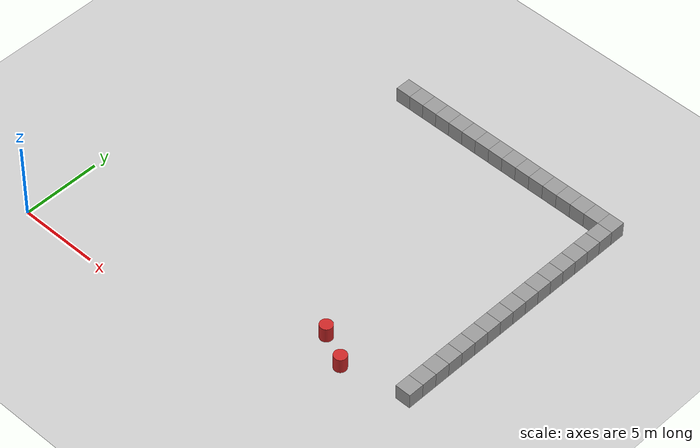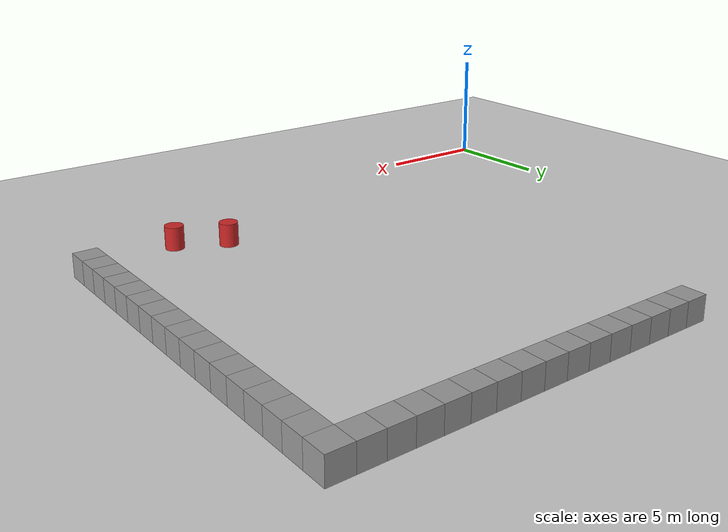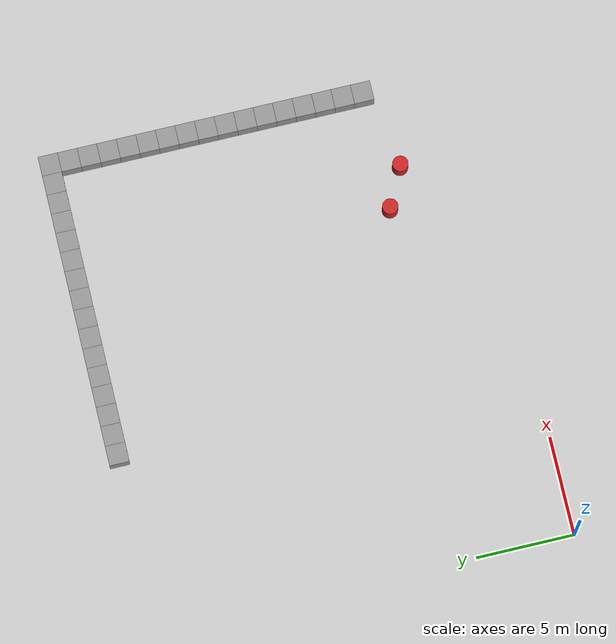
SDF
<sdf version="1.4">
 <world name="default">
  <model name="ground_plane">
   <static>1</static>
   <link name="link">
    <collision name="collision">
     <geometry><plane><normal>0 0 1</normal><size>100 100</size></plane></geometry>
     <surface><friction><ode><mu>100</mu><mu2>50</mu2></ode></friction></surface>
    </collision>
    <visual name="visual">
     <cast_shadows>0</cast_shadows>
     <geometry><plane><normal>0 0 1</normal><size>100 100</size></plane></geometry>
     <material>
      <script><uri>file://media/materials/scripts/gazebo.material</uri><name>Gazebo/Grey</name></script>
     </material>
    </visual>
    <velocity_decay><linear>0</linear><angular>0</angular></velocity_decay>
   </link>
  </model>
  <model name="unit_box_112">
   <pose>9 21 0.5 0 -0 0</pose>
   <link name="link">
    <inertial>
     <mass>1</mass>
     <inertia><ixx>1</ixx><ixy>0</ixy><ixz>0</ixz><iyy>1</iyy><iyz>0</iyz><izz>1</izz></inertia>
    </inertial>
    <collision name="collision"><geometry><box><size>1 1 1</size></box></geometry></collision>
    <visual name="visual">
     <geometry><box><size>1 1 1</size></box></geometry>
     <material>
      <script><uri>file://media/materials/scripts/gazebo.material</uri><name>Gazebo/Grey</name></script>
     </material>
    </visual>
    <velocity_decay><linear>0</linear><angular>0</angular></velocity_decay>
   </link>
   <static>1</static>
  </model>
  <model name="unit_box_113">
   <pose>10 21 0.5 0 -0 0</pose>
   <link name="link">
    <inertial>
     <mass>1</mass>
     <inertia><ixx>1</ixx><ixy>0</ixy><ixz>0</ixz><iyy>1</iyy><iyz>0</iyz><izz>1</izz></inertia>
    </inertial>
    <collision name="collision"><geometry><box><size>1 1 1</size></box></geometry></collision>
    <visual name="visual">
     <geometry><box><size>1 1 1</size></box></geometry>
     <material>
      <script><uri>file://media/materials/scripts/gazebo.material</uri><name>Gazebo/Grey</name></script>
     </material>
    </visual>
    <velocity_decay><linear>0</linear><angular>0</angular></velocity_decay>
   </link>
   <static>1</static>
  </model>
  <model name="unit_box_114">
   <pose>11 21 0.5 0 -0 0</pose>
   <link name="link">
    <inertial>
     <mass>1</mass>
     <inertia><ixx>1</ixx><ixy>0</ixy><ixz>0</ixz><iyy>1</iyy><iyz>0</iyz><izz>1</izz></inertia>
    </inertial>
    <collision name="collision"><geometry><box><size>1 1 1</size></box></geometry></collision>
    <visual name="visual">
     <geometry><box><size>1 1 1</size></box></geometry>
     <material>
      <script><uri>file://media/materials/scripts/gazebo.material</uri><name>Gazebo/Grey</name></script>
     </material>
    </visual>
    <velocity_decay><linear>0</linear><angular>0</angular></velocity_decay>
   </link>
   <static>1</static>
  </model>
  <model name="unit_box_115">
   <pose>12 21 0.5 0 -0 0</pose>
   <link name="link">
    <inertial>
     <mass>1</mass>
     <inertia><ixx>1</ixx><ixy>0</ixy><ixz>0</ixz><iyy>1</iyy><iyz>0</iyz><izz>1</izz></inertia>
    </inertial>
    <collision name="collision"><geometry><box><size>1 1 1</size></box></geometry></collision>
    <visual name="visual">
     <geometry><box><size>1 1 1</size></box></geometry>
     <material>
      <script><uri>file://media/materials/scripts/gazebo.material</uri><name>Gazebo/Grey</name></script>
     </material>
    </visual>
    <velocity_decay><linear>0</linear><angular>0</angular></velocity_decay>
   </link>
   <static>1</static>
  </model>
  <model name="unit_box_116">
   <pose>13 21 0.5 0 -0 0</pose>
   <link name="link">
    <inertial>
     <mass>1</mass>
     <inertia><ixx>1</ixx><ixy>0</ixy><ixz>0</ixz><iyy>1</iyy><iyz>0</iyz><izz>1</izz></inertia>
    </inertial>
    <collision name="collision"><geometry><box><size>1 1 1</size></box></geometry></collision>
    <visual name="visual">
     <geometry><box><size>1 1 1</size></box></geometry>
     <material>
      <script><uri>file://media/materials/scripts/gazebo.material</uri><name>Gazebo/Grey</name></script>
     </material>
    </visual>
    <velocity_decay><linear>0</linear><angular>0</angular></velocity_decay>
   </link>
   <static>1</static>
  </model>
  <model name="unit_box_121">
   <pose>14 21 0.5 0 -0 0</pose>
   <link name="link">
    <inertial>
     <mass>1</mass>
     <inertia><ixx>1</ixx><ixy>0</ixy><ixz>0</ixz><iyy>1</iyy><iyz>0</iyz><izz>1</izz></inertia>
    </inertial>
    <collision name="collision"><geometry><box><size>1 1 1</size></box></geometry></collision>
    <visual name="visual">
     <geometry><box><size>1 1 1</size></box></geometry>
     <material>
      <script><uri>file://media/materials/scripts/gazebo.material</uri><name>Gazebo/Grey</name></script>
     </material>
    </visual>
    <velocity_decay><linear>0</linear><angular>0</angular></velocity_decay>
   </link>
   <static>1</static>
  </model>
  <model name="unit_box_134">
   <pose>15 21 0.5 0 -0 0</pose>
   <link name="link">
    <inertial>
     <mass>1</mass>
     <inertia><ixx>1</ixx><ixy>0</ixy><ixz>0</ixz><iyy>1</iyy><iyz>0</iyz><izz>1</izz></inertia>
    </inertial>
    <collision name="collision"><geometry><box><size>1 1 1</size></box></geometry></collision>
    <visual name="visual">
     <geometry><box><size>1 1 1</size></box></geometry>
     <material>
      <script><uri>file://media/materials/scripts/gazebo.material</uri><name>Gazebo/Grey</name></script>
     </material>
    </visual>
    <velocity_decay><linear>0</linear><angular>0</angular></velocity_decay>
   </link>
   <static>1</static>
  </model>
  <model name="unit_box_135">
   <pose>16 21 0.5 0 0 0</pose>
   <link name="link">
    <inertial>
     <mass>1</mass>
     <inertia><ixx>1</ixx><ixy>0</ixy><ixz>0</ixz><iyy>1</iyy><iyz>0</iyz><izz>1</izz></inertia>
    </inertial>
    <collision name="collision"><geometry><box><size>1 1 1</size></box></geometry></collision>
    <visual name="visual">
     <geometry><box><size>1 1 1</size></box></geometry>
     <material>
      <script><uri>file://media/materials/scripts/gazebo.material</uri><name>Gazebo/Grey</name></script>
     </material>
    </visual>
    <velocity_decay><linear>0</linear><angular>0</angular></velocity_decay>
   </link>
   <static>1</static>
  </model>
  <model name="unit_box_136">
   <pose>17 21 0.5 0 0 0</pose>
   <link name="link">
    <inertial>
     <mass>1</mass>
     <inertia><ixx>1</ixx><ixy>0</ixy><ixz>0</ixz><iyy>1</iyy><iyz>0</iyz><izz>1</izz></inertia>
    </inertial>
    <collision name="collision"><geometry><box><size>1 1 1</size></box></geometry></collision>
    <visual name="visual">
     <geometry><box><size>1 1 1</size></box></geometry>
     <material>
      <script><uri>file://media/materials/scripts/gazebo.material</uri><name>Gazebo/Grey</name></script>
     </material>
    </visual>
    <velocity_decay><linear>0</linear><angular>0</angular></velocity_decay>
   </link>
   <static>1</static>
  </model>
  <model name="unit_box_137">
   <pose>18 21 0.5 0 0 0</pose>
   <link name="link">
    <inertial>
     <mass>1</mass>
     <inertia><ixx>1</ixx><ixy>0</ixy><ixz>0</ixz><iyy>1</iyy><iyz>0</iyz><izz>1</izz></inertia>
    </inertial>
    <collision name="collision"><geometry><box><size>1 1 1</size></box></geometry></collision>
    <visual name="visual">
     <geometry><box><size>1 1 1</size></box></geometry>
     <material>
      <script><uri>file://media/materials/scripts/gazebo.material</uri><name>Gazebo/Grey</name></script>
     </material>
    </visual>
    <velocity_decay><linear>0</linear><angular>0</angular></velocity_decay>
   </link>
   <static>1</static>
  </model>
  <model name="unit_box_146">
   <pose>19 21 0.5 0 -0 0</pose>
   <link name="link">
    <inertial>
     <mass>1</mass>
     <inertia><ixx>1</ixx><ixy>0</ixy><ixz>0</ixz><iyy>1</iyy><iyz>0</iyz><izz>1</izz></inertia>
    </inertial>
    <collision name="collision"><geometry><box><size>1 1 1</size></box></geometry></collision>
    <visual name="visual">
     <geometry><box><size>1 1 1</size></box></geometry>
     <material>
      <script><uri>file://media/materials/scripts/gazebo.material</uri><name>Gazebo/Grey</name></script>
     </material>
    </visual>
    <velocity_decay><linear>0</linear><angular>0</angular></velocity_decay>
   </link>
   <static>1</static>
  </model>
  <model name="unit_box_147">
   <pose>20 21 0.5 0 -0 0</pose>
   <link name="link">
    <inertial>
     <mass>1</mass>
     <inertia><ixx>1</ixx><ixy>0</ixy><ixz>0</ixz><iyy>1</iyy><iyz>0</iyz><izz>1</izz></inertia>
    </inertial>
    <collision name="collision"><geometry><box><size>1 1 1</size></box></geometry></collision>
    <visual name="visual">
     <geometry><box><size>1 1 1</size></box></geometry>
     <material>
      <script><uri>file://media/materials/scripts/gazebo.material</uri><name>Gazebo/Grey</name></script>
     </material>
    </visual>
    <velocity_decay><linear>0</linear><angular>0</angular></velocity_decay>
   </link>
   <static>1</static>
  </model>
  <model name="unit_box_148">
   <pose>21 21 0.5 0 -0 0</pose>
   <link name="link">
    <inertial>
     <mass>1</mass>
     <inertia><ixx>1</ixx><ixy>0</ixy><ixz>0</ixz><iyy>1</iyy><iyz>0</iyz><izz>1</izz></inertia>
    </inertial>
    <collision name="collision"><geometry><box><size>1 1 1</size></box></geometry></collision>
    <visual name="visual">
     <geometry><box><size>1 1 1</size></box></geometry>
     <material>
      <script><uri>file://media/materials/scripts/gazebo.material</uri><name>Gazebo/Grey</name></script>
     </material>
    </visual>
    <velocity_decay><linear>0</linear><angular>0</angular></velocity_decay>
   </link>
   <static>1</static>
  </model>
  <model name="unit_box_150">
   <pose>22 21 0.5 0 -0 0</pose>
   <link name="link">
    <inertial>
     <mass>1</mass>
     <inertia><ixx>1</ixx><ixy>0</ixy><ixz>0</ixz><iyy>1</iyy><iyz>0</iyz><izz>1</izz></inertia>
    </inertial>
    <collision name="collision"><geometry><box><size>1 1 1</size></box></geometry></collision>
    <visual name="visual">
     <geometry><box><size>1 1 1</size></box></geometry>
     <material>
      <script><uri>file://media/materials/scripts/gazebo.material</uri><name>Gazebo/Grey</name></script>
     </material>
    </visual>
    <velocity_decay><linear>0</linear><angular>0</angular></velocity_decay>
   </link>
   <static>1</static>
  </model>
  <model name="unit_box_151">
   <pose>23 21 0.5 0 -0 0</pose>
   <link name="link">
    <inertial>
     <mass>1</mass>
     <inertia><ixx>1</ixx><ixy>0</ixy><ixz>0</ixz><iyy>1</iyy><iyz>0</iyz><izz>1</izz></inertia>
    </inertial>
    <collision name="collision"><geometry><box><size>1 1 1</size></box></geometry></collision>
    <visual name="visual">
     <geometry><box><size>1 1 1</size></box></geometry>
     <material>
      <script><uri>file://media/materials/scripts/gazebo.material</uri><name>Gazebo/Grey</name></script>
     </material>
    </visual>
    <velocity_decay><linear>0</linear><angular>0</angular></velocity_decay>
   </link>
   <static>1</static>
  </model>
  <model name="unit_box_152">
   <pose>24 21 0.5 0 -0 0</pose>
   <link name="link">
    <inertial>
     <mass>1</mass>
     <inertia><ixx>1</ixx><ixy>0</ixy><ixz>0</ixz><iyy>1</iyy><iyz>0</iyz><izz>1</izz></inertia>
    </inertial>
    <collision name="collision"><geometry><box><size>1 1 1</size></box></geometry></collision>
    <visual name="visual">
     <geometry><box><size>1 1 1</size></box></geometry>
     <material>
      <script><uri>file://media/materials/scripts/gazebo.material</uri><name>Gazebo/Grey</name></script>
     </material>
    </visual>
    <velocity_decay><linear>0</linear><angular>0</angular></velocity_decay>
   </link>
   <static>1</static>
  </model>
  <model name="unit_box_153">
   <pose>24 20 0.5 0 -0 0</pose>
   <link name="link">
    <inertial>
     <mass>1</mass>
     <inertia><ixx>1</ixx><ixy>0</ixy><ixz>0</ixz><iyy>1</iyy><iyz>0</iyz><izz>1</izz></inertia>
    </inertial>
    <collision name="collision"><geometry><box><size>1 1 1</size></box></geometry></collision>
    <visual name="visual">
     <geometry><box><size>1 1 1</size></box></geometry>
     <material>
      <script><uri>file://media/materials/scripts/gazebo.material</uri><name>Gazebo/Grey</name></script>
     </material>
    </visual>
    <velocity_decay><linear>0</linear><angular>0</angular></velocity_decay>
   </link>
   <static>1</static>
  </model>
  <model name="unit_box_154">
   <pose>24 19 0.5 0 -0 0</pose>
   <link name="link">
    <inertial>
     <mass>1</mass>
     <inertia><ixx>1</ixx><ixy>0</ixy><ixz>0</ixz><iyy>1</iyy><iyz>0</iyz><izz>1</izz></inertia>
    </inertial>
    <collision name="collision"><geometry><box><size>1 1 1</size></box></geometry></collision>
    <visual name="visual">
     <geometry><box><size>1 1 1</size></box></geometry>
     <material>
      <script><uri>file://media/materials/scripts/gazebo.material</uri><name>Gazebo/Grey</name></script>
     </material>
    </visual>
    <velocity_decay><linear>0</linear><angular>0</angular></velocity_decay>
   </link>
   <static>1</static>
  </model>
  <model name="unit_box_155">
   <pose>24 18 0.5 0 -0 0</pose>
   <link name="link">
    <inertial>
     <mass>1</mass>
     <inertia><ixx>1</ixx><ixy>0</ixy><ixz>0</ixz><iyy>1</iyy><iyz>0</iyz><izz>1</izz></inertia>
    </inertial>
    <collision name="collision"><geometry><box><size>1 1 1</size></box></geometry></collision>
    <visual name="visual">
     <geometry><box><size>1 1 1</size></box></geometry>
     <material>
      <script><uri>file://media/materials/scripts/gazebo.material</uri><name>Gazebo/Grey</name></script>
     </material>
    </visual>
    <velocity_decay><linear>0</linear><angular>0</angular></velocity_decay>
   </link>
   <static>1</static>
  </model>
  <model name="unit_box_156">
   <pose>24 17 0.5 0 -0 0</pose>
   <link name="link">
    <inertial>
     <mass>1</mass>
     <inertia><ixx>1</ixx><ixy>0</ixy><ixz>0</ixz><iyy>1</iyy><iyz>0</iyz><izz>1</izz></inertia>
    </inertial>
    <collision name="collision"><geometry><box><size>1 1 1</size></box></geometry></collision>
    <visual name="visual">
     <geometry><box><size>1 1 1</size></box></geometry>
     <material>
      <script><uri>file://media/materials/scripts/gazebo.material</uri><name>Gazebo/Grey</name></script>
     </material>
    </visual>
    <velocity_decay><linear>0</linear><angular>0</angular></velocity_decay>
   </link>
   <static>1</static>
  </model>
  <model name="unit_box_157">
   <pose>24 16 0.5 0 -0 0</pose>
   <link name="link">
    <inertial>
     <mass>1</mass>
     <inertia><ixx>1</ixx><ixy>0</ixy><ixz>0</ixz><iyy>1</iyy><iyz>0</iyz><izz>1</izz></inertia>
    </inertial>
    <collision name="collision"><geometry><box><size>1 1 1</size></box></geometry></collision>
    <visual name="visual">
     <geometry><box><size>1 1 1</size></box></geometry>
     <material>
      <script><uri>file://media/materials/scripts/gazebo.material</uri><name>Gazebo/Grey</name></script>
     </material>
    </visual>
    <velocity_decay><linear>0</linear><angular>0</angular></velocity_decay>
   </link>
   <static>1</static>
  </model>
  <model name="unit_box_158">
   <pose>24 15 0.5 0 -0 0</pose>
   <link name="link">
    <inertial>
     <mass>1</mass>
     <inertia><ixx>1</ixx><ixy>0</ixy><ixz>0</ixz><iyy>1</iyy><iyz>0</iyz><izz>1</izz></inertia>
    </inertial>
    <collision name="collision"><geometry><box><size>1 1 1</size></box></geometry></collision>
    <visual name="visual">
     <geometry><box><size>1 1 1</size></box></geometry>
     <material>
      <script><uri>file://media/materials/scripts/gazebo.material</uri><name>Gazebo/Grey</name></script>
     </material>
    </visual>
    <velocity_decay><linear>0</linear><angular>0</angular></velocity_decay>
   </link>
   <static>1</static>
  </model>
  <model name="unit_box_159">
   <pose>24 14 0.5 0 -0 0</pose>
   <link name="link">
    <inertial>
     <mass>1</mass>
     <inertia><ixx>1</ixx><ixy>0</ixy><ixz>0</ixz><iyy>1</iyy><iyz>0</iyz><izz>1</izz></inertia>
    </inertial>
    <collision name="collision"><geometry><box><size>1 1 1</size></box></geometry></collision>
    <visual name="visual">
     <geometry><box><size>1 1 1</size></box></geometry>
     <material>
      <script><uri>file://media/materials/scripts/gazebo.material</uri><name>Gazebo/Grey</name></script>
     </material>
    </visual>
    <velocity_decay><linear>0</linear><angular>0</angular></velocity_decay>
   </link>
   <static>1</static>
  </model>
  <model name="unit_box_160">
   <pose>24 13 0.5 0 -0 0</pose>
   <link name="link">
    <inertial>
     <mass>1</mass>
     <inertia><ixx>1</ixx><ixy>0</ixy><ixz>0</ixz><iyy>1</iyy><iyz>0</iyz><izz>1</izz></inertia>
    </inertial>
    <collision name="collision"><geometry><box><size>1 1 1</size></box></geometry></collision>
    <visual name="visual">
     <geometry><box><size>1 1 1</size></box></geometry>
     <material>
      <script><uri>file://media/materials/scripts/gazebo.material</uri><name>Gazebo/Grey</name></script>
     </material>
    </visual>
    <velocity_decay><linear>0</linear><angular>0</angular></velocity_decay>
   </link>
   <static>1</static>
  </model>
  <model name="unit_box_161">
   <pose>24 12 0.5 0 -0 0</pose>
   <link name="link">
    <inertial>
     <mass>1</mass>
     <inertia><ixx>1</ixx><ixy>0</ixy><ixz>0</ixz><iyy>1</iyy><iyz>0</iyz><izz>1</izz></inertia>
    </inertial>
    <collision name="collision"><geometry><box><size>1 1 1</size></box></geometry></collision>
    <visual name="visual">
     <geometry><box><size>1 1 1</size></box></geometry>
     <material>
      <script><uri>file://media/materials/scripts/gazebo.material</uri><name>Gazebo/Grey</name></script>
     </material>
    </visual>
    <velocity_decay><linear>0</linear><angular>0</angular></velocity_decay>
   </link>
   <static>1</static>
  </model>
  <model name="unit_box_162">
   <pose>24 11 0.5 0 -0 0</pose>
   <link name="link">
    <inertial>
     <mass>1</mass>
     <inertia><ixx>1</ixx><ixy>0</ixy><ixz>0</ixz><iyy>1</iyy><iyz>0</iyz><izz>1</izz></inertia>
    </inertial>
    <collision name="collision"><geometry><box><size>1 1 1</size></box></geometry></collision>
    <visual name="visual">
     <geometry><box><size>1 1 1</size></box></geometry>
     <material>
      <script><uri>file://media/materials/scripts/gazebo.material</uri><name>Gazebo/Grey</name></script>
     </material>
    </visual>
    <velocity_decay><linear>0</linear><angular>0</angular></velocity_decay>
   </link>
   <static>1</static>
  </model>
  <model name="unit_box_188">
   <pose>24 10 0.5 0 -0 0</pose>
   <link name="link">
    <inertial>
     <mass>1</mass>
     <inertia><ixx>1</ixx><ixy>0</ixy><ixz>0</ixz><iyy>1</iyy><iyz>0</iyz><izz>1</izz></inertia>
    </inertial>
    <collision name="collision"><geometry><box><size>1 1 1</size></box></geometry></collision>
    <visual name="visual">
     <geometry><box><size>1 1 1</size></box></geometry>
     <material>
      <script><uri>file://media/materials/scripts/gazebo.material</uri><name>Gazebo/Grey</name></script>
     </material>
    </visual>
    <velocity_decay><linear>0</linear><angular>0</angular></velocity_decay>
   </link>
   <static>1</static>
  </model>
  <model name="unit_box_189">
   <pose>24 9 0.5 0 -0 0</pose>
   <link name="link">
    <inertial>
     <mass>1</mass>
     <inertia><ixx>1</ixx><ixy>0</ixy><ixz>0</ixz><iyy>1</iyy><iyz>0</iyz><izz>1</izz></inertia>
    </inertial>
    <collision name="collision"><geometry><box><size>1 1 1</size></box></geometry></collision>
    <visual name="visual">
     <geometry><box><size>1 1 1</size></box></geometry>
     <material>
      <script><uri>file://media/materials/scripts/gazebo.material</uri><name>Gazebo/Grey</name></script>
     </material>
    </visual>
    <velocity_decay><linear>0</linear><angular>0</angular></velocity_decay>
   </link>
   <static>1</static>
  </model>
  <model name="unit_box_190">
   <pose>24 8 0.5 0 -0 0</pose>
   <link name="link">
    <inertial>
     <mass>1</mass>
     <inertia><ixx>1</ixx><ixy>0</ixy><ixz>0</ixz><iyy>1</iyy><iyz>0</iyz><izz>1</izz></inertia>
    </inertial>
    <collision name="collision"><geometry><box><size>1 1 1</size></box></geometry></collision>
    <visual name="visual">
     <geometry><box><size>1 1 1</size></box></geometry>
     <material>
      <script><uri>file://media/materials/scripts/gazebo.material</uri><name>Gazebo/Grey</name></script>
     </material>
    </visual>
    <velocity_decay><linear>0</linear><angular>0</angular></velocity_decay>
   </link>
   <static>1</static>
  </model>
  <model name="unit_box_191">
   <pose>24 7 0.5 0 -0 0</pose>
   <link name="link">
    <inertial>
     <mass>1</mass>
     <inertia><ixx>1</ixx><ixy>0</ixy><ixz>0</ixz><iyy>1</iyy><iyz>0</iyz><izz>1</izz></inertia>
    </inertial>
    <collision name="collision"><geometry><box><size>1 1 1</size></box></geometry></collision>
    <visual name="visual">
     <geometry><box><size>1 1 1</size></box></geometry>
     <material>
      <script><uri>file://media/materials/scripts/gazebo.material</uri><name>Gazebo/Grey</name></script>
     </material>
    </visual>
    <velocity_decay><linear>0</linear><angular>0</angular></velocity_decay>
   </link>
   <static>1</static>
  </model>
  <model name="unit_box_192">
   <pose>24 6 0.5 0 -0 0</pose>
   <link name="link">
    <inertial>
     <mass>1</mass>
     <inertia><ixx>1</ixx><ixy>0</ixy><ixz>0</ixz><iyy>1</iyy><iyz>0</iyz><izz>1</izz></inertia>
    </inertial>
    <collision name="collision"><geometry><box><size>1 1 1</size></box></geometry></collision>
    <visual name="visual">
     <geometry><box><size>1 1 1</size></box></geometry>
     <material>
      <script><uri>file://media/materials/scripts/gazebo.material</uri><name>Gazebo/Grey</name></script>
     </material>
    </visual>
    <velocity_decay><linear>0</linear><angular>0</angular></velocity_decay>
   </link>
   <static>1</static>
  </model>
  <model name="unit_box_194">
   <pose>24 5 0.5 0 -0 0</pose>
   <link name="link">
    <inertial>
     <mass>1</mass>
     <inertia><ixx>1</ixx><ixy>0</ixy><ixz>0</ixz><iyy>1</iyy><iyz>0</iyz><izz>1</izz></inertia>
    </inertial>
    <collision name="collision"><geometry><box><size>1 1 1</size></box></geometry></collision>
    <visual name="visual">
     <geometry><box><size>1 1 1</size></box></geometry>
     <material>
      <script><uri>file://media/materials/scripts/gazebo.material</uri><name>Gazebo/Grey</name></script>
     </material>
    </visual>
    <velocity_decay><linear>0</linear><angular>0</angular></velocity_decay>
   </link>
   <static>1</static>
  </model>
  <model name="unit_cylinder_9">
   <pose>20 4 0.5 0 -0 0</pose>
   <link name="link">
    <inertial>
     <mass>1</mass>
     <inertia><ixx>1</ixx><ixy>0</ixy><ixz>0</ixz><iyy>1</iyy><iyz>0</iyz><izz>1</izz></inertia>
    </inertial>
    <collision name="collision">
     <geometry><cylinder><radius>0.40</radius><length>1</length></cylinder></geometry>
    </collision>
    <visual name="visual">
     <geometry><cylinder><radius>0.40</radius><length>1</length></cylinder></geometry>
     <material>
      <script><uri>file://media/materials/scripts/gazebo.material</uri><name>Gazebo/Red</name></script>
     </material>
    </visual>
    <velocity_decay><linear>0</linear><angular>0</angular></velocity_decay>
   </link>
   <static>1</static>
  </model>
  <model name="unit_cylinder_10">
   <pose>18 5 0.5 0 -0 0</pose>
   <link name="link">
    <inertial>
     <mass>1</mass>
     <inertia><ixx>1</ixx><ixy>0</ixy><ixz>0</ixz><iyy>1</iyy><iyz>0</iyz><izz>1</izz></inertia>
    </inertial>
    <collision name="collision">
     <geometry><cylinder><radius>0.40</radius><length>1</length></cylinder></geometry>
    </collision>
    <visual name="visual">
     <geometry><cylinder><radius>0.40</radius><length>1</length></cylinder></geometry>
     <material>
      <script><uri>file://media/materials/scripts/gazebo.material</uri><name>Gazebo/Red</name></script>
     </material>
    </visual>
    <velocity_decay><linear>0</linear><angular>0</angular></velocity_decay>
   </link>
   <static>1</static>
  </model>
 </world>
</sdf>
